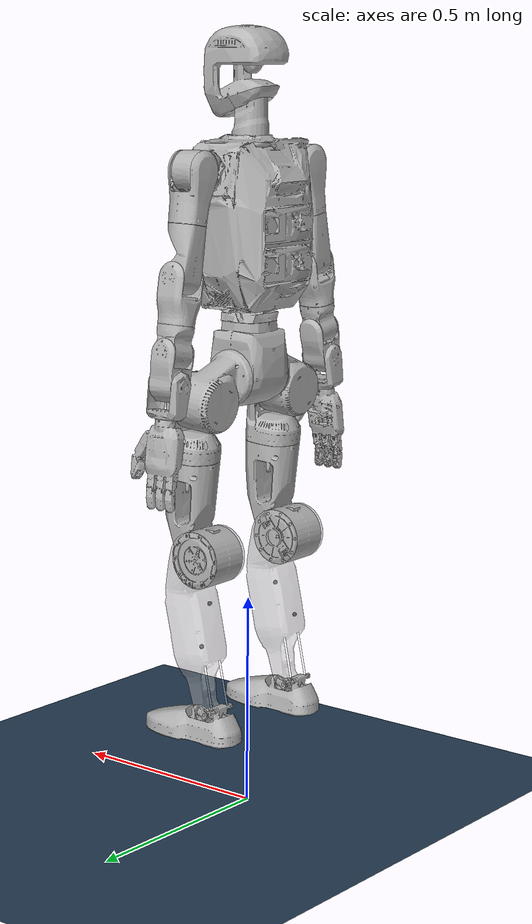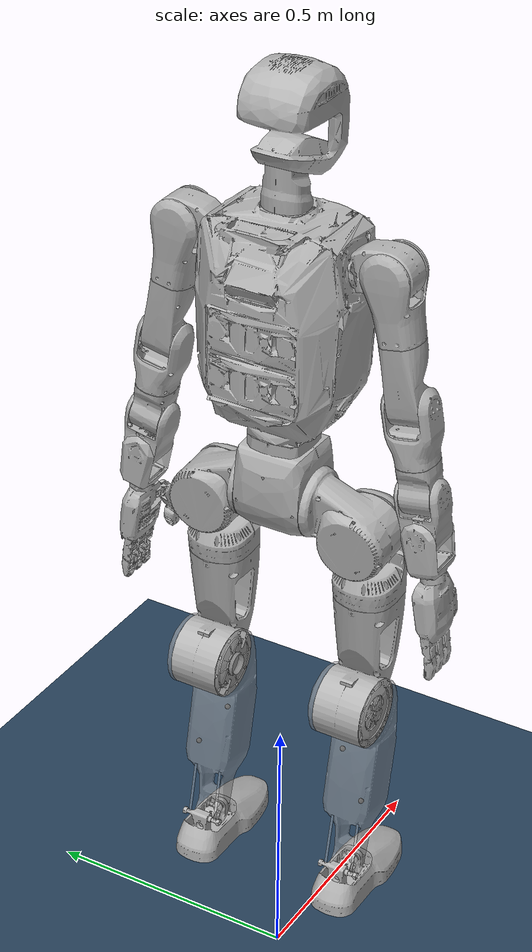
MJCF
<mujoco model="m2 scene">
  <include file="M2v6_real.xml"/>

  <statistic center="0.5 0.5 1.2" extent="1.0"/>

  <visual>
    <headlight diffuse="0.6 0.6 0.6" ambient="0.3 0.3 0.3" specular="0 0 0"/>
    <rgba haze="0.15 0.25 0.35 1"/>
    <global azimuth="-130" elevation="-20"/>
  </visual>

  <asset>
    <texture type="skybox" builtin="gradient" rgb1="0.3 0.5 0.7" rgb2="0 0 0" width="512" height="3072"/>
    <texture type="2d" name="groundplane" builtin="checker" mark="edge" rgb1="0.2 0.3 0.4" rgb2="0.1 0.2 0.3"
      markrgb="0.8 0.8 0.8" width="300" height="300"/>
    <material name="groundplane" texture="groundplane" texuniform="true" texrepeat="5 5" reflectance="0.2"/>
  </asset>

  <worldbody>
    <light pos="0 0 1.5" dir="0 0 -1" directional="true"/>
    <geom name="floor" size="0 0 0.05" type="plane" material="groundplane" friction="1.0 0.01 0.001"/>
  </worldbody>
</mujoco>

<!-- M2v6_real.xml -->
<mujoco model="motion2_29dof">
  <compiler angle="radian" meshdir="meshes_reduce/" />
  <option timestep="0.0002" />
  <default>
    <default class="m2">
      <default class="visual">
        <geom type="mesh" contype="0" conaffinity="0" group="2" density="0" material="silver"/>
      </default>
      <default class="collision">
        <geom group="3" rgba="0.2 0.6 0.2 0.5" type="capsule" contype="1" conaffinity="1"/>
        <default class="foot_capsule">
          <geom type="capsule" size="0.01"/>
        </default>
      </default>
      <site group="5" rgba="1 0 0 1"/>
    </default>
  </default>
  <asset>
    <material name="silver" rgba="0.7 0.7 0.7 1"/>
    <material name="black" rgba="0.3 0.3 0.3 1"/>

    <mesh name="pelvis_link" file="pelvis_link.STL" />

    <mesh name="left_hip_pitch_link" file="left_hip_pitch_link.STL" />
    <mesh name="left_hip_roll_link" file="left_hip_roll_link.STL" />
    <mesh name="left_hip_yaw_link" file="left_hip_yaw_link.STL" />
    <mesh name="left_knee_link" file="left_knee_link.STL" />
    <mesh name="left_ankle_pitch_link" file="left_ankle_pitch_link.STL" />
    <mesh name="left_ankle_roll_link" file="left_ankle_roll_link.STL" />

    <mesh name="right_hip_pitch_link" file="right_hip_pitch_link.STL" />
    <mesh name="right_hip_roll_link" file="right_hip_roll_link.STL" />
    <mesh name="right_hip_yaw_link" file="right_hip_yaw_link.STL" />
    <mesh name="right_knee_link" file="right_knee_link.STL" />
    <mesh name="right_ankle_pitch_link" file="right_ankle_pitch_link.STL" />
    <mesh name="right_ankle_roll_link" file="right_ankle_roll_link.STL" />

    <mesh name="torso_link" file="torso_link.STL" />
    <mesh name="left_shoulder_pitch_link" file="left_shoulder_pitch_link.STL" />
    <mesh name="left_shoulder_roll_link" file="left_shoulder_roll_link.STL" />
    <mesh name="left_shoulder_yaw_link" file="left_shoulder_yaw_link.STL" />
    <mesh name="left_elbow_link" file="left_elbow_link.STL" />
    <mesh name="left_wrist_yaw_link" file="left_wrist_yaw_link.STL"/>
    <mesh name="left_wrist_pitch_link" file="left_wrist_pitch_link.STL"/>
    <mesh name="left_wrist_roll_link" file="left_wrist_roll_link.STL"/>
    <mesh name="left_hand_link" file="left_hand_link.STL" />

    <mesh name="right_shoulder_pitch_link" file="right_shoulder_pitch_link.STL" />
    <mesh name="right_shoulder_roll_link" file="right_shoulder_roll_link.STL" />
    <mesh name="right_shoulder_yaw_link" file="right_shoulder_yaw_link.STL" />
    <mesh name="right_elbow_link" file="right_elbow_link.STL" />
    <mesh name="right_wrist_yaw_link" file="right_wrist_yaw_link.STL"/>
    <mesh name="right_wrist_pitch_link" file="right_wrist_pitch_link.STL"/>
    <mesh name="right_wrist_roll_link" file="right_wrist_roll_link.STL"/>
    <mesh name="right_hand_link" file="right_hand_link.STL" />
    <mesh name="head_yaw_link" file="head_yaw_link.STL" />
    <mesh name="head_pitch_link" file="head_pitch_link.STL" />
  </asset>

  <default>
    <default class="EC-A10020-P2-24">
      <joint damping="0.05" armature="0.274752" frictionloss="1.8" solimplimit="0.95 0.99 0.001" solreflimit="0.002 1"  limited="true" />
    </default>
    <default class="EC-A8116-P1-18H">
      <joint damping="0.05" armature="0.063828"  frictionloss="0.9" solimplimit="0.95 0.99 0.001" solreflimit="0.002 1"  limited="true" />
    </default>
    <default class="EC-A6408-P2-30.25H">
      <joint damping="0.05" armature="0.057648938" frictionloss="0.5" solimplimit="0.95 0.99 0.001" solreflimit="0.002 1"  limited="true" />
    </default>
    <default class="EC-A6408-P2-25">
      <joint damping="0.05" armature="0.03875" frictionloss="0.15" solimplimit="0.95 0.99 0.001" solreflimit="0.002 1"  limited="true" />
    </default>
    <default class="EC-A8112-P1-18H">
      <joint damping="0.05" armature="0.031752" frictionloss="0.08" solimplimit="0.95 0.99 0.001" solreflimit="0.002 1"  limited="true" />
    </default>
    <default class="EC-A4310-P2-36H">
      <joint damping="0.05" armature="0.023328" frictionloss="0.08" solimplimit="0.95 0.99 0.001" solreflimit="0.002 1"  limited="true" />
    </default>
    <default class="EC-A2806-P2-36">
      <joint damping="0.05" armature="0.005522096" frictionloss="0.08" solimplimit="0.95 0.99 0.001" solreflimit="0.002 1"  limited="true" />
    </default>
    <default class="passive_joint">
      <joint damping="0.01" armature="0.0" frictionloss="0.0" solimplimit="0.95 0.99 0.001" solreflimit="0.002 1"  limited="true" />
    </default>
  </default>

  <worldbody>
    <body name="pelvis_link" pos="0 0 1.1" childclass="m2">
      <inertial pos="0.000404 2.32e-06 -0.0507628" quat="0.999814 0.00051 -0.0192091 -0.001634" mass="3.751" diaginertia="0.0136351 0.0123701 0.0106031"/>
      <joint name="floating_base_joint" type="free" limited="false" actuatorfrclimited="false" />
      <geom class="visual" mesh="pelvis_link"/>
      <geom name="pelvis_collision" class="collision" type="sphere" size="0.08" pos="0 0 -0.065"/>
      <site name="imu" size="0.01" pos="0.0 0.0 -0.12153" />

      <body name="left_hip_pitch_link" pos="0 0.0645 -0.066">
        <inertial pos="0.0085536 0.0788795 -0.043761" quat="0.3931855 0.8881544 0.2181438 -0.0948693" mass="2.8802" diaginertia="0.0042339 0.0036165 0.0020071"/>
        <joint name="left_hip_pitch_joint" pos="0 0 0" axis="0 1 0" range="-2.71368 2.87138" class="EC-A8116-P1-18H" />
        <geom class="visual" mesh="left_hip_pitch_link"/>

        <body name="left_hip_roll_link" pos="0.0039383 0.0855 -0.049845" quat="0.999223 0 -0.0394143 0">
          <inertial pos="0.0362143 0.0001356 -0.0989265" quat="0.9866859 -0.0010695 -0.1620377 0.0139144" mass="1.49636" diaginertia="0.0058925 0.0055939 0.0024366"/>
          <joint name="left_hip_roll_joint" pos="0 0 0" axis="1 0 0" range="-0.5236 2.96706" class="EC-A10020-P2-24" />
          <geom class="visual" mesh="left_hip_roll_link"/>
          <geom name="left_hip_collision" class="collision" size="0.056" fromto="0.02 0.0 0.015 0.02 0.0 -0.08"/>

          <body name="left_hip_yaw_link" pos="0.026 0 -0.1505">
            <inertial pos="-0.0382311 0.0043708 -0.1646913" quat="0.5571708 -0.1671556 -0.0999463 0.8072363" mass="3.9129" diaginertia="0.0249074 0.023221 0.0046711"/>
            <joint name="left_hip_yaw_joint" pos="0 0 0" axis="0 0 -1" range="-2.87979 2.87979" class="EC-A6408-P2-30.25H" />
            <geom class="visual" mesh="left_hip_yaw_link"/>
            <geom name="left_thigh_collision" class="collision" size="0.056" fromto="0.0 0.0 0.0 0.0 0.0 -0.05"/>
            <geom name="left_thigh_collision2" class="collision" size="0.05" fromto="0.0 0.0 -0.08 -0.002 0.0 -0.11"/>
            <geom name="left_thigh_collision3" pos="0.024 0.0 -0.17" euler ="0 0.45 0" class="collision" type="box" size="0.005 0.02 0.03" />

            <body name="left_knee_link" pos="-0.058 0 -0.2045" quat="0.999223 0 0.0394143 0">
              <inertial pos="0.0344943 -0.000167 -0.1592361" quat="0.9998913 -0.0011232 -0.0123323 0.0079994" mass="3.11084" diaginertia="0.0339105 0.0334615 0.0062204"/>
              <joint name="left_knee_joint" pos="0 0 0" axis="0 1 0" range="-0.08727 2.87979" class="EC-A10020-P2-24" />
              <geom class="visual" mesh="left_knee_link" rgba="0.7 0.7 0.7 0.5"/>
              <geom name="left_knee_collision" class="collision" type="cylinder" pos="0 0 0" euler="1.57 0 0" size="0.065 0.06" />
              <geom name="left_knee_collision2" pos="0.08 0.0 -0.05" euler ="0 -0.25 0" class="collision" type="box" size="0.005 0.045 0.03" />
              <geom name="left_shin_collision" class="collision" size="0.048" fromto="0.045 0.0 -0.089 0.009 0.0 -0.25"/>
              <geom name="left_linkage_brace_collision" class="collision" size="0.03" fromto="0.01 0.0 -0.28 -0.02 0.0 -0.375"/>

              <body name="left_ankle_motor_1_link" pos="0.01299519 0.0 -0.12693189" quat = "0.16244539 0.98069338 0.01779066 -0.10740339" >
                <inertial pos="0 0 0" quat="1 0 0 0" mass="0.05" diaginertia="1e-05 1e-05 1e-05"/>
                <joint name="left_ankle_motor_1_joint" pos="0 0 0" axis="-1 0 0" range="-2 1.5"  class="EC-A6408-P2-25"/>
                <geom name="left_anchor_point_1" contype="0" conaffinity="0" size="0.005" pos="0.0 0.0275 0.0" rgba="0.2 0.2 0.2 1" />
                <body name="left_ankle_long_rod" pos="0 0.0275 0" quat = "0.69770471 0.11199388 0.11492665 -0.69818147">
                  <joint name="left-anchor_joint_1" pos="0.0 0.0 0.0" type="ball" damping="0.0" />
                  <geom type="cylinder" contype="0" conaffinity="0" size="0.0025 0.1225" pos = "0.0 0.0 0.1225" rgba="1 1 1 0.3"/>
                </body>
              </body>

              <body name="left_ankle_motor_2_link" pos="-0.00648481 0.0 -0.21480189" quat = "0.98069445 0.16243894 0.10740351 -0.01778996" >
                <inertial pos="0 0 0" quat="1 0 0 0" mass="0.05" diaginertia="1e-05 1e-05 1e-05"/>
                <joint name="left_ankle_motor_2_joint" pos="0 0 0" axis="-1 0 0" range="-1.5 2" class="EC-A6408-P2-25"/>
                <geom name="left_anchor_point_2" contype="0" conaffinity="0" size="0.005" pos="0.0 0.0275 0.0" rgba="0.2 0.2 0.2 1" />
                <body name="left_ankle_short_rod" pos="-0.0 0.0275 0" quat = "-0.1099241 -0.69776595 0.69851034 -0.11455427">
                  <joint name="left-anchor_joint_2" pos="0.0 0.0 0.0" type="ball" damping="0.0"/>
                  <geom type="cylinder" contype="0" conaffinity="0" size="0.0025 0.0775" pos = "0.0 0.0 0.0775" rgba="1 1 1 0.3"/>
                </body>
              </body>

              <body name="left_ankle_pitch_link" pos="0 0 -0.375">
                <inertial pos="-0.0005629 0 -0.000547" quat="0.5093492 0.4904726 0.4904726 0.5093492" mass="0.15783" diaginertia="4.625e-05 4.43942e-05 1.33758e-05"/>
                <joint name="left_ankle_pitch_joint" pos="0 0 0" axis="0 1 0" range="-0.87266 0.5236" class="passive_joint" />
                <geom class="visual" mesh="left_ankle_pitch_link"/>

                <body name="left_ankle_roll_link">
                  <inertial pos="0.0223678 -1.4e-06 -0.0293285" quat="5.489121e-06 0.6585183 9.952085e-06 0.7525647" mass="1.36478" diaginertia="0.0067589 0.0065105 0.0013947"/>
                  <joint name="left_ankle_roll_joint" pos="0 0 0" axis="1 0 0" range="-0.2618 0.2618" class="passive_joint"/>
                  <geom class="visual" mesh="left_ankle_roll_link"/>
                  <geom name="left_foot1_collision" class="foot_capsule" fromto="0.045 -0.045 -0.051 0.12 -0.04 -0.051"/>
                  <geom name="left_foot2_collision" class="foot_capsule" fromto="-0.064 -0.033 -0.051 0.143 -0.033 -0.051"/>
                  <geom name="left_foot3_collision" class="foot_capsule" fromto="-0.070 -0.026 -0.051 0.156 -0.026 -0.051"/>
                  <geom name="left_foot4_collision" class="foot_capsule" fromto="-0.074 -0.018 -0.051 0.163 -0.018 -0.051"/>
                  <geom name="left_foot5_collision" class="foot_capsule" fromto="-0.075 -0.01 -0.051 0.166 -0.01 -0.051"/>
                  <geom name="left_foot6_collision" class="foot_capsule" fromto="-0.076 0.0 -0.051 0.167 0.0 -0.051"/>
                  <geom name="left_foot7_collision" class="foot_capsule" fromto="-0.075 0.01 -0.051 0.166 0.01 -0.051"/>
                  <geom name="left_foot8_collision" class="foot_capsule" fromto="-0.074 0.018 -0.051 0.163 0.018 -0.051"/>
                  <geom name="left_foot9_collision" class="foot_capsule" fromto="-0.071 0.026 -0.051 0.156 0.026 -0.051"/>
                  <geom name="left_foot10_collision" class="foot_capsule" fromto="-0.064 0.033 -0.051 0.142 0.033 -0.051"/>
                  <geom name="left_foot11_collision" class="foot_capsule" fromto="0.045 0.045 -0.051 0.124 0.04 -0.051"/>
                </body>
              </body>
            </body>
          </body>
        </body>
      </body>
      <body name="right_hip_pitch_link" pos="0 -0.0645 -0.066">
        <inertial pos="0.0084981 -0.0785883 -0.0434711" quat="0.8895725 0.3905326 0.0944105 -0.2173286" mass="2.8802" diaginertia="0.0043342 0.0036905 0.002026"/>
        <joint name="right_hip_pitch_joint" pos="0 0 0" axis="0 -1 0" range="-2.87138 2.71368" class="EC-A8116-P1-18H" />
        <geom class="visual" mesh="right_hip_pitch_link"/>

        <body name="right_hip_roll_link" pos="0.0039383 -0.0855 -0.049845" quat="0.999223 0 -0.0394143 0">
          <inertial pos="0.0362144 -0.0001352 -0.0989269" quat="0.9866419 0.0016207 -0.1620342 -0.0167358" mass="1.49635" diaginertia="0.0058924 0.0055937 0.0024365"/>
          <joint name="right_hip_roll_joint" pos="0 0 0" axis="1 0 0" range="-2.96706 0.5236" class="EC-A10020-P2-24" />
          <geom class="visual" mesh="right_hip_roll_link"/>
          <geom name="right_hip_collision" class="collision" size="0.056" fromto="0.02 0.0 0.015 0.02 0.0 -0.08"/>

          <body name="right_hip_yaw_link" pos="0.026 0 -0.1505">
            <inertial pos="-0.0382354 -0.0043703 -0.164687" quat="0.80724 -0.099955 -0.1671828 0.5571557" mass="3.9129" diaginertia="0.0249068 0.02322 0.0046714"/>
            <joint name="right_hip_yaw_joint" pos="0 0 0" axis="0 0 -1" range="-2.87979 2.87979" class="EC-A6408-P2-30.25H" />
            <geom class="visual" mesh="right_hip_yaw_link"/>
            <geom name="right_thigh_collision" class="collision" size="0.056" fromto="0.0 0.0 0.0 0.0 0.0 -0.05"/>
            <geom name="right_thigh_collision2" class="collision" size="0.05" fromto="0.0 0.0 -0.08 -0.002 0.0 -0.11"/>
            <geom name="right_thigh_collision3" pos="0.024 0.0 -0.17" euler ="0 0.45 0" class="collision" type="box" size="0.005 0.02 0.03" />

            <body name="right_knee_link" pos="-0.058 0 -0.2045" quat="0.999223 0 0.0394143 0">
              <inertial pos="0.0344941 0.0001685 -0.1592379" quat="0.9998954 0.0010636 -0.0123263 -0.007489" mass="3.11092" diaginertia="0.033912 0.0334629 0.0062206"/>
              <joint name="right_knee_joint" pos="0 0 0" axis="0 -1 0" range="-2.87979 0.08727" class="EC-A10020-P2-24" />
              <geom class="visual" mesh="right_knee_link" rgba="0.7 0.7 0.7 0.5"/>
              <geom name="right_knee_collision" class="collision" type="cylinder" pos="0 0 0" euler="1.57 0 0" size="0.065 0.06" />
              <geom name="right_knee_collision2" pos="0.08 0.0 -0.05" euler ="0 -0.25 0" class="collision" type="box" size="0.005 0.045 0.03" />
              <geom name="right_shin_collision" class="collision" size="0.048" fromto="0.045 0.0 -0.089 0.009 0.0 -0.25"/>
              <geom name="right_linkage_brace_collision" class="collision" size="0.03" fromto="0.01 0.0 -0.28 -0.02 0.0 -0.375"/>

              <body name="right_ankle_motor_1_link" pos="0.01299519 0.0 -0.12693189" quat = "0.98069338 0.16244539 0.10740339 -0.01779066" >
                <inertial pos="0 0 0" quat="1 0 0 0" mass="0.05" diaginertia="1e-05 1e-05 1e-05"/>
                <joint name="right_ankle_motor_1_joint" pos="0 0 0" axis="-1 0 0" range="-1.5 2" class="EC-A6408-P2-25"/>
                <geom name="right_anchor_point_1" contype="0" conaffinity="0" size="0.005" pos="0.0 0.0275 0.0" rgba="0.2 0.2 0.2 1" />
                <body name="right_ankle_long_rod" pos="0.0 0.0275 0.0" quat = "-0.11199388 -0.69770471 0.69818147 -0.11492665">
                  <joint name="right-anchor_joint_1" pos="0.0 0.0 0.0"  type="ball" damping="0.0"/>
                  <geom type="cylinder" contype="0" conaffinity="0" size="0.0025 0.1225" pos="0.0 0.0 0.1225" rgba="1 1 1 0.3"/>
                </body>
              </body>

              <body name="right_ankle_motor_2_link" pos="-0.00648481 0.0 -0.21480189" quat = "0.16243894 0.98069445 0.01778996 -0.10740351">
                <inertial pos="0 0 0" quat="1 0 0 0" mass="0.05" diaginertia="1e-05 1e-05 1e-05"/>
                <joint name="right_ankle_motor_2_joint" pos="0 0 0" axis="-1 0 0" range="-2 1.5" class="EC-A6408-P2-25"/>
                <geom name="right_anchor_point_2" contype="0" conaffinity="0" size="0.005" pos="0.0 0.0275 0.0" rgba="0.2 0.2 0.2 1" />
                <body name="right_ankle_short_rod" pos="0.0 0.0275 0.0" quat = "0.69776595 0.1099241 0.11455427 -0.69851034">
                  <joint name="right-anchor_joint_2" pos="0.0 0.0 0.0" type="ball" damping="0.0"/>
                  <geom type="cylinder" contype="0" conaffinity="0" size="0.0025 0.0775" pos = "0.0 0.0 0.0775" rgba="1 1 1 0.3"/>
                </body>
              </body>

              <body name="right_ankle_pitch_link" pos="0 0 -0.375">
                <inertial pos="-0.0005629 0 -0.000547" quat="0.5093492 0.4904726 0.4904726 0.5093492" mass="0.15783" diaginertia="4.625e-05 4.43942e-05 1.33758e-05"/>
                <joint name="right_ankle_pitch_joint" pos="0 0 0" axis="0 1 0" range="-0.87266 0.5236" class="passive_joint"/>
                <geom class="visual" mesh="right_ankle_pitch_link"/>

                <body name="right_ankle_roll_link">
                  <inertial pos="0.0223678 -1.4e-06 -0.0293285" quat="5.489121e-06 0.6585183 9.952085e-06 0.7525647" mass="1.36478" diaginertia="0.0067589 0.0065105 0.0013947"/>
                  <joint name="right_ankle_roll_joint" pos="0 0 0" axis="1 0 0" range="-0.2618 0.2618" class="passive_joint"/>
                  <geom class="visual" mesh="right_ankle_roll_link"/>
                  <geom name="right_foot1_collision" class="foot_capsule" fromto="0.045 -0.045 -0.051 0.12 -0.04 -0.051"/>
                  <geom name="right_foot2_collision" class="foot_capsule" fromto="-0.064 -0.033 -0.051 0.143 -0.033 -0.051"/>
                  <geom name="right_foot3_collision" class="foot_capsule" fromto="-0.070 -0.026 -0.051 0.156 -0.026 -0.051"/>
                  <geom name="right_foot4_collision" class="foot_capsule" fromto="-0.074 -0.018 -0.051 0.163 -0.018 -0.051"/>
                  <geom name="right_foot5_collision" class="foot_capsule" fromto="-0.075 -0.01 -0.051 0.166 -0.01 -0.051"/>
                  <geom name="right_foot6_collision" class="foot_capsule" fromto="-0.076 0.0 -0.051 0.167 0.0 -0.051"/>
                  <geom name="right_foot7_collision" class="foot_capsule" fromto="-0.075 0.01 -0.051 0.166 0.01 -0.051"/>
                  <geom name="right_foot8_collision" class="foot_capsule" fromto="-0.074 0.018 -0.051 0.163 0.018 -0.051"/>
                  <geom name="right_foot9_collision" class="foot_capsule" fromto="-0.071 0.026 -0.051 0.156 0.026 -0.051"/>
                  <geom name="right_foot10_collision" class="foot_capsule" fromto="-0.064 0.033 -0.051 0.142 0.033 -0.051"/>
                  <geom name="right_foot11_collision" class="foot_capsule" fromto="0.045 0.045 -0.051 0.124 0.04 -0.051"/>
                </body>
              </body>
            </body>
          </body>
        </body>
      </body>
      <body name="torso_link" pos="0 0 0">
        <inertial pos="-0.0189168 0.0012999 0.2633349" quat="0.999788 1.340745e-05 -0.0205878 0.00028" mass="15.85368" diaginertia="0.271644 0.237095 0.110372"/>
        <joint name="waist_joint" pos="0 0 0" axis="0 0 -1" range="-2.44346 2.44346" class="EC-A6408-P2-30.25H" />
        <geom class="visual" mesh="torso_link"/>
        <geom name="torso_collision" class="collision" type="box" size="0.065 0.1 0.19" pos="0 0 0.28"/>
        <geom name="torso_collision2" class="collision" type="cylinder" size="0.06 0.03" pos="0 0 0.06"/>

        <body name="left_shoulder_pitch_link" pos="0 0.13245 0.39503" quat="0.9961948 0.0871543 0 0">
          <inertial pos="0.0021981 0.0545562 0.0012038" quat="0.683798 0.7294789 0.0161216 -0.0045821" mass="0.80439" diaginertia="0.0010368 0.0009251 0.0004845"/>
          <joint name="left_shoulder_pitch_joint" pos="0 0 0" axis="0 1 0" range="-3.14159 2.44346" class="EC-A8112-P1-18H" />
          <geom class="visual" mesh="left_shoulder_pitch_link"/>
          <geom name="left_shoulder_pitch_collision" pos="0 0.067 0" euler="0 1.57 0" class="collision" type="cylinder" size="0.045 0.04"/>

          <body name="left_shoulder_roll_link" pos="0 0.067888 0">
            <inertial pos="0.0007508 -0.0004299 -0.0743968" quat="0.999684 -0.0016586 -0.0250111 -0.0018752" mass="0.87106" diaginertia="0.0017015 0.0018499 0.0007555"/>
            <joint name="left_shoulder_roll_joint" pos="0 0 0" axis="1 0 0" range="-0.20944 3.1765" class="EC-A4310-P2-36H" />
            <geom class="visual" mesh="left_shoulder_roll_link"/>

            <body name="left_shoulder_yaw_link" pos="0 0 -0.11641">
              <inertial pos="-0.0023623 0.0042327 -0.0980338" quat="0.6304836 0.0184993 0.027176 0.7755061" mass="0.72854" diaginertia="0.0013035 0.0013347 0.0003721"/>
              <joint name="left_shoulder_yaw_joint" pos="0 0 0" axis="0 0 -1" range="-2.79253 2.79253" class="EC-A4310-P2-36H" />
              <geom class="visual" mesh="left_shoulder_yaw_link"/>
              <geom name="left_shoulder_yaw_collision" class="collision" size="0.042" fromto="0.0 0.0 0.0 0.0 0.0 0.028"/>
              <geom name="left_shoulder_yaw_collision2" pos="-0.015 -0.0005 -0.065" class="collision" type="box" size="0.02 0.026 0.025" />

              <body name="left_elbow_link" pos="0 0 -0.12009">
                <inertial pos="-3.03e-05 0.000562 -0.0637671" quat="0.710494 0.0401343 -0.0370188 0.7015819" mass="0.73794" diaginertia="0.00094 0.0010846 0.0005811"/>
                <joint name="left_elbow_joint" pos="0 0 0" axis="0 1 0" range="-2.44346 1.5708" class="EC-A4310-P2-36H" />
                <geom class="visual" mesh="left_elbow_link"/>
                <geom name="left_elbow_yaw_collision" pos="0 0 0" euler="1.57 0 0" class="collision" type="cylinder" size="0.035 0.045" />
                <geom name="left_elbow_yaw_collision2" class="collision" size="0.038" fromto="0.0 0.0 -0.092 0.0 0.0 -0.07"/>

                <body name="left_wrist_yaw_link" pos="0 0 -0.10341">
                  <inertial pos="6.16e-06 0.0035763 -0.0533539" quat="0.722265 0.6899619 -0.0304978 -0.0368214" mass="0.63961" diaginertia="0.000462 0.0002745 0.0004576"/>
                  <joint name="left_wrist_yaw_joint" pos="0 0 0" axis="0 0 -1" range="-2.44346 2.44346" class="EC-A4310-P2-36H"/>
                  <geom class="visual" mesh="left_wrist_yaw_link"/>

                  <body name="left_wrist_pitch_link" pos="0 0 -0.062589">
                    <inertial pos="-0.0044641 0.0009752 -0.0590826" quat="0.687268 0.003598 -0.0648158 0.7234975" mass="0.65835" diaginertia="0.0006618 0.0007666 0.0003909"/>
                    <joint name="left_wrist_pitch_joint" pos="0 0 0" axis="0 1 0" range="-1.65806 1.65806" class="EC-A4310-P2-36H"/>
                    <geom class="visual" mesh="left_wrist_pitch_link"/>
                    <geom name="left_wrist_pitch_collision" pos="0 0 0" euler="1.57 0 0" class="collision" type="cylinder" size="0.033 0.038" />

                    <body name="left_wrist_roll_link" pos="0 0 -0.07">
                      <inertial pos="-0.0010672 5.79e-06 -0.0387109" quat="0.6887192 0.1636446 0.1633307 0.6871749" mass="0.21364" diaginertia="0.0004477 0.0002932 0.0002797"/>
                      <joint name="left_wrist_roll_joint" pos="0 0 0" axis="-1 0 0" range="-1.91986 1.91986" class="EC-A4310-P2-36H"/>
                      <geom class="visual" mesh="left_wrist_roll_link"/>
                      <geom name="left_wrist_roll_collision" class="collision" size="0.04" fromto="0.0 0.0 -0.05 0.0 0.0 0.0"/>

                      <body name="left_hand_link" pos="0 0 -0.0805">
                        <inertial pos="0.0157869 -0.0120541 -0.0819598" quat="0.642629 -0.0942074 -0.109369 0.752457" mass="0.693332" diaginertia="0.00213591 0.00129862 0.000939153"/>
                        <geom class="visual" mesh="left_hand_link"/>
                        <geom name="left_hand_collision" class="collision" size="0.04" fromto="0.0 -0.025 -0.165 0.0 -0.018 -0.05"/>
                        <geom name="left_hand_collision2" class="collision" size="0.05" fromto="0.065 -0.045 -0.09 0.0 -0.018 -0.05"/>
                      </body>
                    </body>
                  </body>
                </body>
              </body>
            </body>
          </body>
        </body>

        <body name="right_shoulder_pitch_link" pos="0 -0.13245 0.39503" quat="0.9961948 -0.0871543 0 0">
          <inertial pos="0.0021976 -0.0545562 0.0013209" quat="0.7284641 0.6848601 0.0051751 -0.0167327" mass="0.80437" diaginertia="0.0010366 0.0009249 0.0004844"/>
          <joint name="right_shoulder_pitch_joint" pos="0 0 0" axis="0 -1 0" range="-2.44346 3.14159" class="EC-A8112-P1-18H" />
          <geom class="visual" mesh="right_shoulder_pitch_link"/>
          <geom name="right_shoulder_pitch_collision" pos="0 -0.067 0" euler="0 1.57 0" class="collision" type="cylinder" size="0.045 0.04"/>

          <body name="right_shoulder_roll_link" pos="0 -0.067888 0">
            <inertial pos="0.000761 0.0003239 -0.0743964" quat="0.9996851 0.0022652 -0.0249604 0.0012388" mass="0.87075" diaginertia="0.0017014 0.0018494 0.0007551"/>
            <joint name="right_shoulder_roll_joint" pos="0 0 0" axis="1 0 0" range="-3.1765 0.20944" class="EC-A4310-P2-36H" />
            <geom class="visual" mesh="right_shoulder_roll_link"/>

            <body name="right_shoulder_yaw_link" pos="0 0 -0.11641">
              <inertial pos="-0.0022424 -0.0042335 -0.0979902" quat="0.7759291 0.0278039 0.0192985 0.6299115" mass="0.72855" diaginertia="0.0013025 0.0013336 0.0003723"/>
              <joint name="right_shoulder_yaw_joint" pos="0 0 0" axis="0 0 -1" range="-2.79253 2.79253" class="EC-A4310-P2-36H" />
              <geom class="visual" mesh="right_shoulder_yaw_link"/>
              <geom name="right_shoulder_yaw_collision" class="collision" size="0.042" fromto="0.0 0.0 0.0 0.0 0.0 0.028"/>
              <geom name="right_shoulder_yaw_collision2" pos="-0.015 -0.0005 -0.065" class="collision" type="box" size="0.02 0.026 0.025" />

              <body name="right_elbow_link" pos="0 0 -0.12009">
                <inertial pos="9.493e-05 -0.0005624 -0.0637674" quat="0.70136 -0.0362373 0.0408741 0.7107111" mass="0.73793" diaginertia="0.00094 0.0010846 0.000581"/>
                <joint name="right_elbow_joint" pos="0 0 0" axis="0 -1 0" range="-1.5708 2.44346" class="EC-A4310-P2-36H" />
                <geom class="visual" mesh="right_elbow_link"/>
                <geom name="right_elbow_yaw_collision" pos="0 0 0" euler="1.57 0 0" class="collision" type="cylinder" size="0.035 0.045" />
                <geom name="right_elbow_yaw_collision2" class="collision" size="0.038" fromto="0.0 0.0 -0.092 0.0 0.0 -0.07"/>

                <body name="right_wrist_yaw_link" pos="0 0 -0.10341">
                  <inertial pos="-0.0001411 -0.0035802 -0.0533539" quat="0.6902387 0.7222323 0.0327514 0.0296374" mass="0.63961" diaginertia="0.0004618 0.0002744 0.0004575"/>
                  <joint name="right_wrist_yaw_joint" pos="0 0 0" axis="0 0 -1" range="-2.44346 2.44346" class="EC-A4310-P2-36H"/>
                  <geom class="visual" mesh="right_wrist_yaw_link"/>

                  <body name="right_wrist_pitch_link" pos="0 0 -0.062589">
                    <inertial pos="-0.0044643 -0.0008322 -0.0590832" quat="0.7237397 -0.0661447 0.004944 0.6868779" mass="0.65834" diaginertia="0.000662 0.0007667 0.0003908"/>
                    <joint name="right_wrist_pitch_joint" pos="0 0 0" axis="0 -1 0" range="-1.65806 1.65806" class="EC-A4310-P2-36H"/>
                    <geom class="visual" mesh="right_wrist_pitch_link"/>
                    <geom name="right_wrist_pitch_collision" pos="0 0 0" euler="1.57 0 0" class="collision" type="cylinder" size="0.033 0.038" />

                    <body name="right_wrist_roll_link" pos="0 0 -0.07">
                      <inertial pos="-0.001584 5.71e-06 -0.038157" quat="0.6785642 0.2015935 0.2012403 0.6770621" mass="0.21663" diaginertia="0.0004567 0.0003019 0.0002804"/>
                      <joint name="right_wrist_roll_joint" pos="0 0 0" axis="-1 0 0" range="-1.91986 1.91986" class="EC-A4310-P2-36H"/>
                      <geom class="visual" mesh="right_wrist_roll_link"/>
                      <geom name="right_wrist_roll_collision" class="collision" size="0.04" fromto="0.0 0.0 -0.05 0.0 0.0 0.0"/>

                      <body name="right_hand_link" pos="0 0 -0.0805">
                        <inertial pos="0.0159859 0.0121336 -0.0810716" quat="0.752112 -0.115334 -0.0979014 0.641437" mass="0.693332" diaginertia="0.00209391 0.00125756 0.000937939"/>
                        <geom class="visual" mesh="right_hand_link"/>
                        <geom name="right_hand_collision" class="collision" size="0.04" fromto="0.0 0.025 -0.165 0.0 0.018 -0.05"/>
                        <geom name="right_hand_collision2" class="collision" size="0.05" fromto="0.065 0.045 -0.09 0.0 0.018 -0.05"/>
                    </body>
                    </body>
                  </body>
                </body>
              </body>
            </body>
          </body>
        </body>

        <body name="head_yaw_link" pos="0 0 0.48242">
          <inertial pos="-0.0004622 0.0021663 0.0376231" quat="0.7338522 0.0392207 0.001983 0.6781731" mass="0.65859" diaginertia="0.0009654 0.0009946 0.0004073"/>
          <joint name="head_yaw_joint" pos="0 0 0" axis="0 0 -1" range="-1.0472 1.0472" class="EC-A2806-P2-36"/>
          <geom class="visual" mesh="head_yaw_link"/>

          <body name="head_pitch_link" pos="0 0 0.076">
            <inertial pos="0.0175949 0.0012013 0.0819239" quat="0.4106879 0.5808592 0.6114724 0.3464673" mass="1.08266" diaginertia="0.0043996 0.0031765 0.003915"/>
            <joint name="head_pitch_joint" pos="0 0 0" axis="0 1 0" range="-0.61087 0.59341" class="EC-A2806-P2-36"/>
            <geom class="visual" mesh="head_pitch_link"/>
            <geom name="head_collision" class="collision" size="0.08" fromto="0.012 0.0 0.03 0.012 0.0 0.09"/>
          </body>
        </body>
      </body>
    </body>

  </worldbody>

  <equality>
    <connect body2="left_ankle_short_rod" body1="left_ankle_roll_link" anchor="-0.03715862 0.0275 0.01732735" solref="0.0001 1"/>
    <connect body2="left_ankle_long_rod" body1="left_ankle_roll_link" anchor="-0.03715862 -0.0275 0.01732735" solref="0.0001 1"/>

    <connect body2="right_ankle_short_rod" body1="right_ankle_roll_link" anchor="-0.03715862 -0.0275 0.01732735" solref="0.0001 1"/>
    <connect body2="right_ankle_long_rod" body1="right_ankle_roll_link" anchor="-0.03715862 0.0275 0.01732735" solref="0.0001 1"/>
  </equality>

  <actuator>
    <motor name="left_hip_pitch" joint="left_hip_pitch_joint" ctrlrange="-130 130" />
    <motor name="left_hip_roll" joint="left_hip_roll_joint" ctrlrange="-330 330" />
    <motor name="left_hip_yaw" joint="left_hip_yaw_joint" ctrlrange="-70 70" />
    <motor name="left_knee" joint="left_knee_joint" ctrlrange="-330 330" />
    <motor name="left_ankle_motor_1_joint" joint="left_ankle_motor_1_joint" ctrlrange="-60 60" />
    <motor name="left_ankle_motor_2_joint" joint="left_ankle_motor_2_joint" ctrlrange="-60 60" />

    <motor name="right_hip_pitch" joint="right_hip_pitch_joint" ctrlrange="-130 130" />
    <motor name="right_hip_roll" joint="right_hip_roll_joint" ctrlrange="-330 330" />
    <motor name="right_hip_yaw" joint="right_hip_yaw_joint" ctrlrange="-70 70" />
    <motor name="right_knee" joint="right_knee_joint" ctrlrange="-330 330" />
    <motor name="right_ankle_motor_1_joint" joint="right_ankle_motor_1_joint" ctrlrange="-60 60" />
    <motor name="right_ankle_motor_2_joint" joint="right_ankle_motor_2_joint" ctrlrange="-60 60" />

    <motor name="waist" joint="waist_joint" ctrlrange="-70 70" />

    <motor name="left_shoulder_pitch" joint="left_shoulder_pitch_joint" ctrlrange="-90 90" />
    <motor name="left_shoulder_roll" joint="left_shoulder_roll_joint" ctrlrange="-36 36" />
    <motor name="left_shoulder_yaw" joint="left_shoulder_yaw_joint" ctrlrange="-36 36" />
    <motor name="left_elbow" joint="left_elbow_joint" ctrlrange="-36 36" />
    <motor name="left_wrist_yaw" joint="left_wrist_yaw_joint" ctrlrange="-36 36" />
    <motor name="left_wrist_pitch" joint="left_wrist_pitch_joint" ctrlrange="-36 36" />
    <motor name="left_wrist_roll" joint="left_wrist_roll_joint" ctrlrange="-36 36" />

    <motor name="right_shoulder_pitch" joint="right_shoulder_pitch_joint" ctrlrange="-90 90" />
    <motor name="right_shoulder_roll" joint="right_shoulder_roll_joint" ctrlrange="-36 36" />
    <motor name="right_shoulder_yaw" joint="right_shoulder_yaw_joint" ctrlrange="-36 36" />
    <motor name="right_elbow" joint="right_elbow_joint" ctrlrange="-36 36" />
    <motor name="right_wrist_yaw" joint="right_wrist_yaw_joint" ctrlrange="-36 36" />
    <motor name="right_wrist_pitch" joint="right_wrist_pitch_joint" ctrlrange="-36 36" />
    <motor name="right_wrist_roll" joint="right_wrist_roll_joint" ctrlrange="-36 36" />

    <motor name="head_yaw" joint="head_yaw_joint" ctrlrange="-12 12" />
    <motor name="head_pitch" joint="head_pitch_joint" ctrlrange="-12 12" />

  </actuator>

  <sensor>
    <jointpos name="left_hip_pitch_pos" joint="left_hip_pitch_joint" />
    <jointpos name="left_hip_roll_pos" joint="left_hip_roll_joint" />
    <jointpos name="left_hip_yaw_pos" joint="left_hip_yaw_joint" />
    <jointpos name="left_knee_pos" joint="left_knee_joint" />
    <jointpos name="left_ankle_motor_1_pos" joint="left_ankle_motor_1_joint" />
    <jointpos name="left_ankle_motor_2_pos" joint="left_ankle_motor_2_joint" />
    <jointpos name="right_hip_pitch_pos" joint="right_hip_pitch_joint" />
    <jointpos name="right_hip_roll_pos" joint="right_hip_roll_joint" />
    <jointpos name="right_hip_yaw_pos" joint="right_hip_yaw_joint" />
    <jointpos name="right_knee_pos" joint="right_knee_joint" />
    <jointpos name="right_ankle_motor_1_pos" joint="right_ankle_motor_1_joint" />
    <jointpos name="right_ankle_motor_2_pos" joint="right_ankle_motor_2_joint" />
    <jointpos name="waist_pos" joint="waist_joint" />
    <jointpos name="left_shoulder_pitch_pos" joint="left_shoulder_pitch_joint" />
    <jointpos name="left_shoulder_roll_pos" joint="left_shoulder_roll_joint" />
    <jointpos name="left_shoulder_yaw_pos" joint="left_shoulder_yaw_joint" />
    <jointpos name="left_elbow_pos" joint="left_elbow_joint" />
    <jointpos name="left_wrist_yaw_pos" joint="left_wrist_yaw_joint" />
    <jointpos name="left_wrist_pitch_pos" joint="left_wrist_pitch_joint" />
    <jointpos name="left_wrist_roll_pos" joint="left_wrist_roll_joint" />
    <jointpos name="right_shoulder_pitch_pos" joint="right_shoulder_pitch_joint" />
    <jointpos name="right_shoulder_roll_pos" joint="right_shoulder_roll_joint" />
    <jointpos name="right_shoulder_yaw_pos" joint="right_shoulder_yaw_joint" />
    <jointpos name="right_elbow_pos" joint="right_elbow_joint" />
    <jointpos name="right_wrist_yaw_pos" joint="right_wrist_yaw_joint" />
    <jointpos name="right_wrist_pitch_pos" joint="right_wrist_pitch_joint" />
    <jointpos name="right_wrist_roll_pos" joint="right_wrist_roll_joint" />
    <jointpos name="head_yaw_pos" joint="head_yaw_joint" />
    <jointpos name="head_pitch_pos" joint="head_pitch_joint" />

    <jointvel name="left_hip_pitch_vel" joint="left_hip_pitch_joint" />
    <jointvel name="left_hip_roll_vel" joint="left_hip_roll_joint" />
    <jointvel name="left_hip_yaw_vel" joint="left_hip_yaw_joint" />
    <jointvel name="left_knee_vel" joint="left_knee_joint" />
    <jointvel name="left_ankle_motor_1_vel" joint="left_ankle_motor_1_joint" />
    <jointvel name="left_ankle_motor_2_vel" joint="left_ankle_motor_2_joint" />
    <jointvel name="right_hip_pitch_vel" joint="right_hip_pitch_joint" />
    <jointvel name="right_hip_roll_vel" joint="right_hip_roll_joint" />
    <jointvel name="right_hip_yaw_vel" joint="right_hip_yaw_joint" />
    <jointvel name="right_knee_vel" joint="right_knee_joint" />
    <jointvel name="right_ankle_motor_1_vel" joint="right_ankle_motor_1_joint" />
    <jointvel name="right_ankle_motor_2_vel" joint="right_ankle_motor_2_joint" />
    <jointvel name="waist_vel" joint="waist_joint" />
    <jointvel name="left_shoulder_pitch_vel" joint="left_shoulder_pitch_joint" />
    <jointvel name="left_shoulder_roll_vel" joint="left_shoulder_roll_joint" />
    <jointvel name="left_shoulder_yaw_vel" joint="left_shoulder_yaw_joint" />
    <jointvel name="left_elbow_vel" joint="left_elbow_joint" />
    <jointvel name="left_wrist_yaw_vel" joint="left_wrist_yaw_joint" />
    <jointvel name="left_wrist_pitch_vel" joint="left_wrist_pitch_joint" />
    <jointvel name="left_wrist_roll_vel" joint="left_wrist_roll_joint" />
    <jointvel name="right_shoulder_pitch_vel" joint="right_shoulder_pitch_joint" />
    <jointvel name="right_shoulder_roll_vel" joint="right_shoulder_roll_joint" />
    <jointvel name="right_shoulder_yaw_vel" joint="right_shoulder_yaw_joint" />
    <jointvel name="right_elbow_vel" joint="right_elbow_joint" />
    <jointvel name="right_wrist_yaw_vel" joint="right_wrist_yaw_joint" />
    <jointvel name="right_wrist_pitch_vel" joint="right_wrist_pitch_joint" />
    <jointvel name="right_wrist_roll_vel" joint="right_wrist_roll_joint" />
    <jointvel name="head_yaw_vel" joint="head_yaw_joint" />
    <jointvel name="head_pitch_vel" joint="head_pitch_joint" />

    <jointactuatorfrc name="left_hip_pitch_torque" joint="left_hip_pitch_joint" />
    <jointactuatorfrc name="left_hip_roll_torque" joint="left_hip_roll_joint" />
    <jointactuatorfrc name="left_hip_yaw_torque" joint="left_hip_yaw_joint" />
    <jointactuatorfrc name="left_knee_torque" joint="left_knee_joint" />
    <jointactuatorfrc name="left_ankle_motor_1_torque" joint="left_ankle_motor_1_joint" />
    <jointactuatorfrc name="left_ankle_motor_2_torque" joint="left_ankle_motor_2_joint" />
    <jointactuatorfrc name="right_hip_pitch_torque" joint="right_hip_pitch_joint" />
    <jointactuatorfrc name="right_hip_roll_torque" joint="right_hip_roll_joint" />
    <jointactuatorfrc name="right_hip_yaw_torque" joint="right_hip_yaw_joint" />
    <jointactuatorfrc name="right_knee_torque" joint="right_knee_joint" />
    <jointactuatorfrc name="right_ankle_motor_1_torque" joint="right_ankle_motor_1_joint" />
    <jointactuatorfrc name="right_ankle_motor_2_torque" joint="right_ankle_motor_2_joint" />
    <jointactuatorfrc name="waist_torque" joint="waist_joint" />
    <jointactuatorfrc name="left_shoulder_pitch_torque" joint="left_shoulder_pitch_joint" />
    <jointactuatorfrc name="left_shoulder_roll_torque" joint="left_shoulder_roll_joint" />
    <jointactuatorfrc name="left_shoulder_yaw_torque" joint="left_shoulder_yaw_joint" />
    <jointactuatorfrc name="left_elbow_torque" joint="left_elbow_joint" />
    <jointactuatorfrc name="left_wrist_yaw_torque" joint="left_wrist_yaw_joint" />
    <jointactuatorfrc name="left_wrist_pitch_torque" joint="left_wrist_pitch_joint" />
    <jointactuatorfrc name="left_wrist_roll_torque" joint="left_wrist_roll_joint" />
    <jointactuatorfrc name="right_shoulder_pitch_torque" joint="right_shoulder_pitch_joint" />
    <jointactuatorfrc name="right_shoulder_roll_torque" joint="right_shoulder_roll_joint" />
    <jointactuatorfrc name="right_shoulder_yaw_torque" joint="right_shoulder_yaw_joint" />
    <jointactuatorfrc name="right_elbow_torque" joint="right_elbow_joint" />
    <jointactuatorfrc name="right_wrist_yaw_torque" joint="right_wrist_yaw_joint" />
    <jointactuatorfrc name="right_wrist_pitch_torque" joint="right_wrist_pitch_joint" />
    <jointactuatorfrc name="right_wrist_roll_torque" joint="right_wrist_roll_joint" />
    <jointactuatorfrc name="head_yaw_torque" joint="head_yaw_joint" />
    <jointactuatorfrc name="head_pitch_torque" joint="head_pitch_joint" />

    <framequat name="imu_quat" objtype="site" objname="imu" />
    <gyro name="imu_gyro" site="imu" />
    <accelerometer name="imu_acc" site="imu" />

    <framepos name="frame_pos" objtype="site" objname="imu" />
    <framelinvel name="frame_vel" objtype="site" objname="imu" />
  </sensor>

  <!-- for unit test -->

</mujoco>
